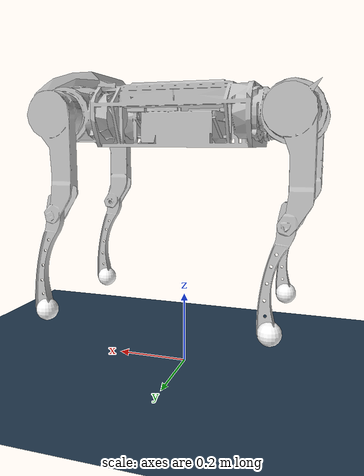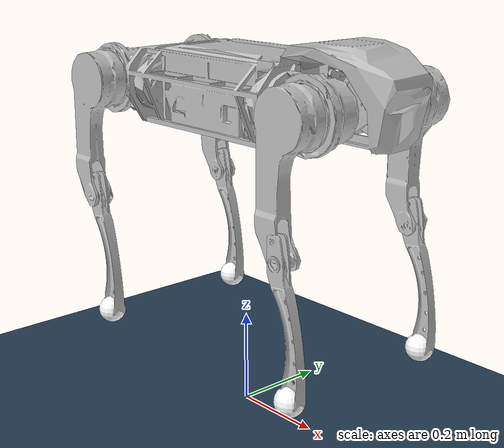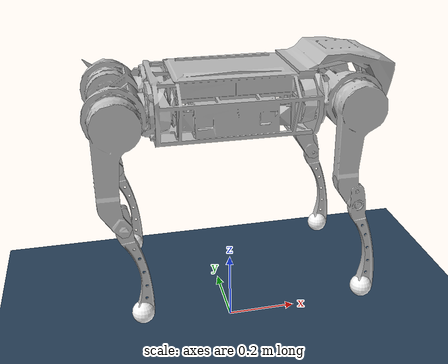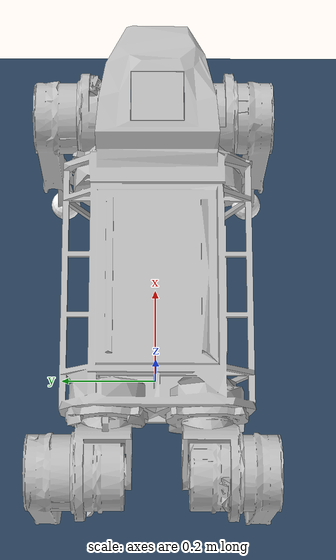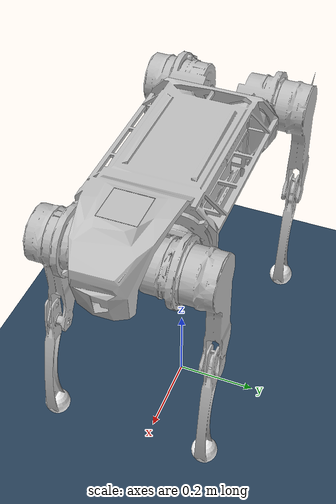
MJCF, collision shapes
<mujoco model="galileo_mini scene">
    <include file="galileo_mini.xml" />
    <option timestep="0.001" integrator="RK4" />

    <visual>
        <headlight diffuse="0.6 0.6 0.6" ambient="0.3 0.3 0.3" specular="0 0 0" />
        <rgba haze="0.15 0.25 0.35 1" />
        <global azimuth="-130" elevation="-20" />
    </visual>

    <asset>
        <texture type="skybox" builtin="gradient" rgb1="0.3 0.5 0.7" rgb2="0 0 0" width="512"
            height="3072" />
        <texture type="2d" name="groundplane" builtin="checker" mark="edge" rgb1="0.2 0.3 0.4"
            rgb2="0.1 0.2 0.3"
            markrgb="0.8 0.8 0.8" width="300" height="300" />
        <material name="groundplane" texture="groundplane" texuniform="true" texrepeat="5 5"
            reflectance="0.2" />
    </asset>

    <worldbody>
        <light pos="0 0 1.5" dir="0 0 -1" directional="true" />
        <geom name="floor" size="0 0 0.05" type="plane" material="groundplane" />

    </worldbody>

</mujoco>

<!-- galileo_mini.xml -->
<mujoco model="galileo_mini">
    <compiler angle="radian" meshdir="../meshes/" autolimits="true" />

    <asset>
        <mesh name="base_link" file="base_link.STL" />
        <mesh name="FR_abd_link" file="FR_abd_link.STL" />
        <mesh name="FR_hip_link" file="FR_hip_link.STL" />
        <mesh name="FR_knee_link" file="FR_knee_link.STL" />
        <mesh name="FR_foot_link" file="FR_foot_link.STL" />
        <mesh name="HR_abd_link" file="HR_abd_link.STL" />
        <mesh name="HR_hip_link" file="HR_hip_link.STL" />
        <mesh name="HR_knee_link" file="HR_knee_link.STL" />
        <mesh name="HR_foot_link" file="HR_foot_link.STL" />
        <mesh name="FL_abd_link" file="FL_abd_link.STL" />
        <mesh name="FL_hip_link" file="FL_hip_link.STL" />
        <mesh name="FL_knee_link" file="FL_knee_link.STL" />
        <mesh name="FL_foot_link" file="FL_foot_link.STL" />
        <mesh name="HL_abd_link" file="HL_abd_link.STL" />
        <mesh name="HL_hip_link" file="HL_hip_link.STL" />
        <mesh name="HL_knee_link" file="HL_knee_link.STL" />
        <mesh name="HL_foot_link" file="HL_foot_link.STL" />
    </asset>
    <worldbody>
        <body name="base_link" pos="0 0 0.7">
            <inertial pos="0.03738 -0.0065903 0.0057934"
                quat="0.0157641 0.708332 0.0109245 0.705619" mass="20.8"
                diaginertia="0.476858 0.40783 0.131084" />
            <joint name="floating_base_joint" type="free" />
            <geom type="mesh" contype="0" conaffinity="0" group="1" density="0"
                rgba="0.75294 0.75294 0.75294 1" mesh="base_link" />
            <geom type="mesh" rgba="0.75294 0.75294 0.75294 1" mesh="base_link" />
            <site name="site_imu" pos="0 0 0" />

            <body name="FR_abd_link" pos="0.2015 -0.08 0">
                <inertial pos="0.067568 -0.0091759 -0.00023747"
                    quat="0.461518 0.473275 0.50733 0.552837" mass="2.86"
                    diaginertia="0.00753518 0.00677611 0.00431971" />
                <joint name="FR_abd_joint" pos="0 0 0" axis="1 0 0" range="-0.80285 0.80285" />
                <geom type="mesh" contype="0" conaffinity="0" group="1" density="0"
                    rgba="0.75294 0.75294 0.75294 1" mesh="FR_abd_link" />
                <geom type="mesh" rgba="0.75294 0.75294 0.75294 1" mesh="FR_abd_link" />
                <body name="FR_hip_link" pos="0.1 -0.10685 0">
                    <inertial pos="-0.0095338 0.026092 -0.067392"
                        quat="0.870643 0.0549937 -0.0729496 0.483357" mass="2.6"
                        diaginertia="0.017109 0.016051 0.00168403" />
                    <joint name="FR_hip_joint" pos="0 0 0" axis="0 1 0" range="-4.1888 1.0472" />
                    <geom type="mesh" contype="0" conaffinity="0" group="1" density="0"
                        rgba="0.75294 0.75294 0.75294 1" mesh="FR_hip_link" />
                    <geom type="mesh" rgba="0.75294 0.75294 0.75294 1" mesh="FR_hip_link" />
                    <body name="FR_knee_link" pos="0 0 -0.26">
                        <inertial pos="0.0178389 -1.57597e-05 -0.0993188"
                            quat="0.703247 0.0575451 0.0571447 0.706305" mass="0.314205"
                            diaginertia="0.00388744 0.0038366 7.88395e-05" />
                        <joint name="FR_knee_joint" pos="0 0 0" axis="0 1 0" range="-2.6965 -0.9163" />
                        <geom type="mesh" contype="0" conaffinity="0" group="1" density="0"
                            rgba="0.75294 0.75294 0.75294 1" mesh="FR_knee_link" />
                        <geom type="mesh" rgba="0.75294 0.75294 0.75294 1" mesh="FR_knee_link" />
                        <geom pos="0.032939 0 -0.26149" type="mesh" contype="0" conaffinity="0"
                            group="1" density="0" rgba="1 1 1 1" mesh="FR_foot_link" />
                        <geom name="FR_foot_link" pos="0.032939 0 -0.26149" type="sphere"
                            rgba="1 1 1 1" size="0.03" friction="0.7 0.02 0.01" />
                        <site name="site_forcesensor1" pos="0.032939 0 -0.26149" />
                    </body>
                </body>
            </body>
            <body name="HR_abd_link" pos="-0.2015 -0.08 0">
                <inertial pos="-0.067556 -0.0095934 -1.7463e-05"
                    quat="0.554404 0.501113 0.477741 0.461829" mass="2.86"
                    diaginertia="0.00751653 0.00676882 0.00432565" />
                <joint name="HR_abd_joint" pos="0 0 0" axis="1 0 0" range="-0.80285 0.80285" />
                <geom type="mesh" contype="0" conaffinity="0" group="1" density="0"
                    rgba="0.75294 0.75294 0.75294 1" mesh="HR_abd_link" />
                <geom type="mesh" rgba="0.75294 0.75294 0.75294 1" mesh="HR_abd_link" />
                <body name="HR_hip_link" pos="-0.1 -0.0934 0">
                    <inertial pos="-0.0098055 0.020667 -0.067167"
                        quat="0.935391 0.0800659 -0.0651055 0.338223" mass="2.6"
                        diaginertia="0.0175517 0.0167351 0.0022722" />
                    <joint name="HR_hip_joint" pos="0 0 0" axis="0 1 0" range="-4.1888 1.0472" />
                    <geom type="mesh" contype="0" conaffinity="0" group="1" density="0"
                        rgba="0.75294 0.75294 0.75294 1" mesh="HR_hip_link" />
                    <geom type="mesh" rgba="0.75294 0.75294 0.75294 1" mesh="HR_hip_link" />
                    <body name="HR_knee_link" pos="0 0 -0.26">
                        <inertial pos="0.0178389 -1.57597e-05 -0.0993188"
                            quat="0.703247 0.0575451 0.0571447 0.706305" mass="0.314205"
                            diaginertia="0.00388744 0.0038366 7.88395e-05" />
                        <joint name="HR_knee_joint" pos="0 0 0" axis="0 1 0" range="-2.6965 -0.9163" />
                        <geom type="mesh" contype="0" conaffinity="0" group="1" density="0"
                            rgba="0.75294 0.75294 0.75294 1" mesh="HR_knee_link" />
                        <geom type="mesh" rgba="0.75294 0.75294 0.75294 1" mesh="HR_knee_link" />
                        <geom pos="0.032939 0 -0.26149" type="mesh" contype="0" conaffinity="0"
                            group="1" density="0" rgba="1 1 1 1" mesh="HR_foot_link" />
                        <geom name="HR_foot_link" pos="0.032939 0 -0.26149" type="sphere"
                            rgba="1 1 1 1" size="0.03" friction="0.7 0.02 0.01" />
                        <site name="site_forcesensor2" pos="0.032939 0 -0.26149" />
                    </body>
                </body>
            </body>
            <body name="FL_abd_link" pos="0.2015 0.08 0">
                <inertial pos="0.067568 0.0095934 1.3738e-05"
                    quat="0.500634 0.554466 0.463464 0.476585" mass="2.86"
                    diaginertia="0.00752069 0.00677878 0.00432153" />
                <joint name="FL_abd_joint" pos="0 0 0" axis="1 0 0" range="-0.80285 0.80285" />
                <geom type="mesh" contype="0" conaffinity="0" group="1" density="0"
                    rgba="0.75294 0.75294 0.75294 1" mesh="FL_abd_link" />
                <geom type="mesh" rgba="0.75294 0.75294 0.75294 1" mesh="FL_abd_link" />
                <body name="FL_hip_link" pos="0.1 0.1065 0">
                    <inertial pos="-0.0090988 -0.0065295 -0.0688"
                        quat="0.419807 -0.0627305 0.0522402 0.903935" mass="2.6"
                        diaginertia="0.017487 0.0165271 0.00167088" />
                    <joint name="FL_hip_joint" pos="0 0 0" axis="0 1 0" range="-4.1888 1.0472" />
                    <geom type="mesh" contype="0" conaffinity="0" group="1" density="0"
                        rgba="0.75294 0.75294 0.75294 1" mesh="FL_hip_link" />
                    <geom type="mesh" rgba="0.75294 0.75294 0.75294 1" mesh="FL_hip_link" />
                    <body name="FL_knee_link" pos="0 0 -0.26">
                        <inertial pos="0.0178389 -1.57597e-05 -0.0993188"
                            quat="0.703247 0.0575451 0.0571447 0.706305" mass="0.314205"
                            diaginertia="0.00388744 0.0038366 7.88395e-05" />
                        <joint name="FL_knee_joint" pos="0 0 0" axis="0 1 0" range="-2.6965 -0.9163" />
                        <geom type="mesh" contype="0" conaffinity="0" group="1" density="0"
                            rgba="0.75294 0.75294 0.75294 1" mesh="FL_knee_link" />
                        <geom type="mesh" rgba="0.75294 0.75294 0.75294 1" mesh="FL_knee_link" />
                        <geom pos="0.032939 0 -0.26149" type="mesh" contype="0" conaffinity="0"
                            group="1" density="0" rgba="1 1 1 1" mesh="FL_foot_link" />
                        <geom name="FL_foot_link" pos="0.0329385 0 -0.26149" type="sphere"
                            rgba="1 1 1 1" size="0.03" friction="0.7 0.02 0.01" />
                        <site name="site_forcesensor3" pos="0.032939 0 -0.26149" />
                    </body>
                </body>
            </body>
            <body name="HL_abd_link" pos="-0.2015 0.08 0">
                <inertial pos="-0.06741 0.0095934 7.3103e-05"
                    quat="0.554404 0.501113 0.477741 0.461829" mass="2.86"
                    diaginertia="0.00751653 0.00676882 0.00432565" />
                <joint name="HL_abd_joint" pos="0 0 0" axis="1 0 0" range="-0.80285 0.80285" />
                <geom type="mesh" contype="0" conaffinity="0" group="1" density="0"
                    rgba="0.75294 0.75294 0.75294 1" mesh="HL_abd_link" />
                <geom type="mesh" rgba="0.75294 0.75294 0.75294 1" mesh="HL_abd_link" />
                <body name="HL_hip_link" pos="-0.1 0.1065 0">
                    <inertial pos="-0.0090357 -0.0065295 -0.0688"
                        quat="0.419807 -0.0627305 0.0522402 0.903935" mass="2.6"
                        diaginertia="0.017487 0.0165271 0.00167088" />
                    <joint name="HL_hip_joint" pos="0 0 0" axis="0 1 0" range="-4.1888 1.0472" />
                    <geom type="mesh" contype="0" conaffinity="0" group="1" density="0"
                        rgba="0.75294 0.75294 0.75294 1" mesh="HL_hip_link" />
                    <geom type="mesh" rgba="0.75294 0.75294 0.75294 1" mesh="HL_hip_link" />
                    <body name="HL_knee_link" pos="6.3209e-05 0 -0.26">
                        <inertial pos="0.0178389 -1.57597e-05 -0.0993188"
                            quat="0.703247 0.0575451 0.0571447 0.706305" mass="0.314205"
                            diaginertia="0.00388744 0.0038366 7.88395e-05" />
                        <joint name="HL_knee_joint" pos="0 0 0" axis="0 1 0" range="-2.6965 -0.9163" />
                        <geom type="mesh" contype="0" conaffinity="0" group="1" density="0"
                            rgba="0.75294 0.75294 0.75294 1" mesh="HL_knee_link" />
                        <geom type="mesh" rgba="0.75294 0.75294 0.75294 1" mesh="HL_knee_link" />
                        <geom pos="0.0329385 0 -0.261493" type="mesh" contype="0" conaffinity="0"
                            group="1" density="0" rgba="1 1 1 1" mesh="HL_foot_link" />
                        <geom name="HL_foot_link" pos="0.0329385 0 -0.261493" type="sphere"
                            rgba="1 1 1 1" size="0.03" friction="0.7 0.02 0.01" />
                        <site name="site_forcesensor4" pos="0.032939 0 -0.26149" />
                    </body>
                </body>
            </body>
        </body>
    </worldbody>
    <actuator>
        <motor name="FR_abd_joint" joint="FR_abd_joint" gear="1" ctrllimited="true"
            ctrlrange="-180 180" />
        <motor name="HR_abd_joint" joint="HR_abd_joint" gear="1" ctrllimited="true"
            ctrlrange="-180 180" />
        <motor name="FL_abd_joint" joint="FL_abd_joint" gear="1" ctrllimited="true"
            ctrlrange="-180 180" />
        <motor name="HL_abd_joint" joint="HL_abd_joint" gear="1" ctrllimited="true"
            ctrlrange="-180 180" />

        <motor name="FR_hip_joint" joint="FR_hip_joint" gear="1" ctrllimited="true"
            ctrlrange="-180 180" />
        <motor name="HR_hip_joint" joint="HR_hip_joint" gear="1" ctrllimited="true"
            ctrlrange="-180 180" />
        <motor name="FL_hip_joint" joint="FL_hip_joint" gear="1" ctrllimited="true"
            ctrlrange="-180 180" />
        <motor name="HL_hip_joint" joint="HL_hip_joint" gear="1" ctrllimited="true"
            ctrlrange="-180 180" />

        <motor name="FR_knee_joint" joint="FR_knee_joint" gear="1" ctrllimited="true"
            ctrlrange="-180 180" />
        <motor name="HR_knee_joint" joint="HR_knee_joint" gear="1" ctrllimited="true"
            ctrlrange="-180 180" />
        <motor name="FL_knee_joint" joint="FL_knee_joint" gear="1" ctrllimited="true"
            ctrlrange="-180 180" />
        <motor name="HL_knee_joint" joint="HL_knee_joint" gear="1" ctrllimited="true"
            ctrlrange="-180 180" />
    </actuator>
    <sensor>
        <force name="forcesensor1" site="site_forcesensor1" cutoff="5000.0" />
        <force name="forcesensor2" site="site_forcesensor2" cutoff="5000.0" />
        <force name="forcesensor3" site="site_forcesensor3" cutoff="5000.0" />
        <force name="forcesensor4" site="site_forcesensor4" cutoff="5000.0" />

        <framequat name="imu_quat" objtype="site" objname="site_imu" />
        <accelerometer name="imu_acc" site="site_imu" />
        <gyro name="imu_gyro" site="site_imu" />
    </sensor>

    <contact>
        <exclude body1="base_link" body2="FR_abd_link" />
        <exclude body1="base_link" body2="HR_abd_link" />
        <exclude body1="base_link" body2="FL_abd_link" />
        <exclude body1="base_link" body2="HL_abd_link" />
        <exclude body1="base_link" body2="FR_hip_link" />
        <exclude body1="base_link" body2="HR_hip_link" />
        <exclude body1="base_link" body2="FL_hip_link" />
        <exclude body1="base_link" body2="HL_hip_link" />
    </contact>

    <keyframe>
        <key name="stand"
            qpos="0 0 0.38 1 0 0 0 0 0.72 -1.44 0 0.72 -1.44 0 0.72 -1.44 0 0.72 -1.44" />
        <key name="down"
            qpos="0 0 0.38 1 0 0 0 -0.5 1.05 -2.46 -0.5 1.05 -2.46 0.5 1.05 -2.46 0.5 1.05 -2.46" />
    </keyframe>

</mujoco>
